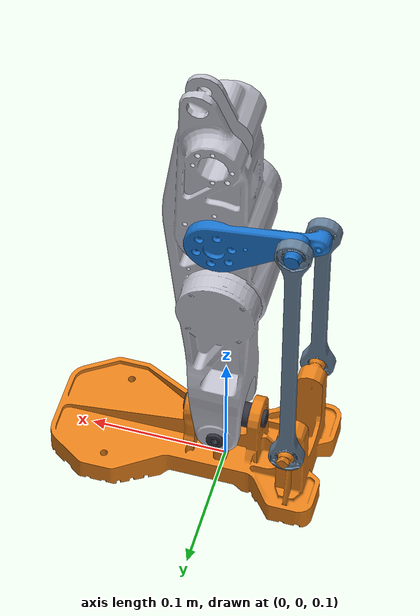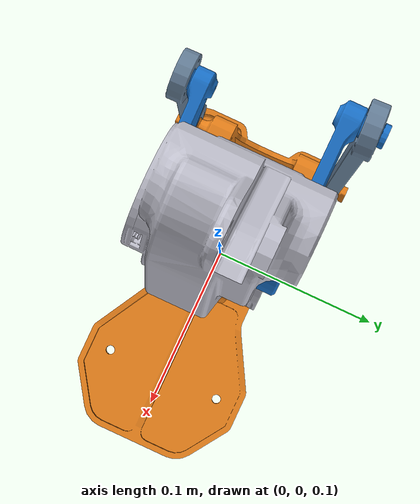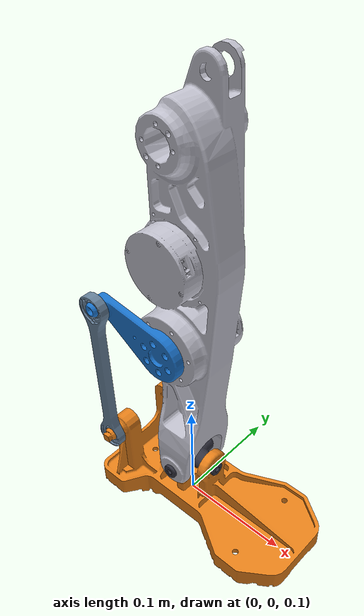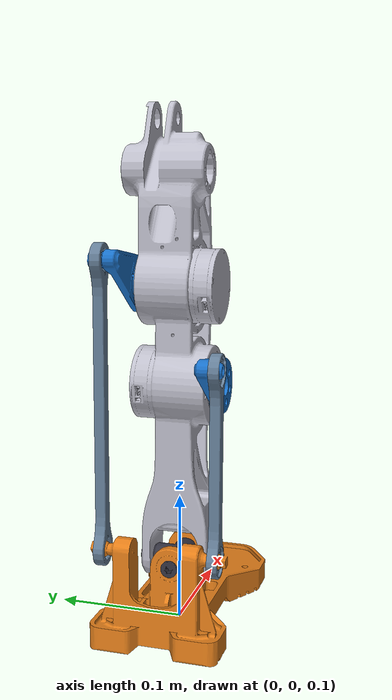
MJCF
<mujoco model="TG10-00-ankle">
  <compiler angle="radian" meshdir="../meshes/"/>
  <option timestep='0.0005' iterations='50' solver='PGS' gravity='0 0 -9.81'/>

  <default>
    <joint limited='true'  />
    <motor ctrllimited='true'/>
    <geom contype='0' conaffinity='0' condim='1' solref='0.005 1'/>
    <equality solref='0.001 1'/>
    <default class='cassie'>
      <geom material='cassie'/>
    </default>
  </default>

  <asset>
    <texture type='skybox' builtin='gradient' width='128' height='128' rgb1='0.4 0.6 0.8' rgb2='0 0 0'/>
    <texture name='plane' type='2d' builtin='checker' rgb1='0.2 0.2 0.2' rgb2='0.3 0.3 0.3' width='512' height='512'/>
    <material name='plane' reflectance='0.0' texture='plane' texrepeat='1 1' texuniform='true'/>
    <material name='cassie'    rgba='0.9 0.5 0.1 1'/>
    <material name='collision' rgba='0.1 0.5 0.9 0'/>
    <material name='obstacle'  rgba='0.2 0.6 0.2 1'/>
    <mesh name="base_link" file="base_link.STL"/>
    <mesh name="pitch_link" file="pl.STL"/>
    <mesh name="foot_link" file="fl.STL"/>
    <mesh name="leftlgl" file="leftlgl.STL"/>
    <mesh name="rlgl" file="rlgl.STL"/>
    <mesh name="ltl" file="ltl.STL"/>
    <mesh name="tlgl" file="tlgl.STL"/>
    <mesh name="rtl" file="rtl.STL"/>
    <mesh name="rtll" file="rtll.STL"/>
    <!-- === 通用物体颜色 === -->
    <material name="slate_grey" rgba="0.4 0.5 0.6 1.0"/>
    <material name="off_white" rgba="0.9 0.9 0.95 1.0"/>
    <material name="target_orange" rgba="0.9 0.5 0.1 1.0"/>

    <!-- === 机器人专用颜色 (分层设计) === -->
    <!-- 主体：深灰色，显得稳重 -->
    <material name="robot_base" rgba="0.2 0.2 0.25 1.0"/>
    <!-- 连杆：浅银色，模拟金属 -->
    <material name="robot_link" rgba="0.75 0.75 0.8 1.0"/>
    <!-- 关节：蓝色，突出活动部件 -->
    <material name="robot_joint" rgba="0.1 0.45 0.8 1.0"/>
    <!-- 末端执行器：红色，醒目 -->
    <material name="robot_ee" rgba="0.9 0.5 0.1 1.0"/>
  </asset>

  <worldbody>
    <body name="base_link"  pos='0 0 0.15' childclass='cassie'>
      <inertial pos="-6.6183e-06 2.4283e-06 0.17237" quat="0.698883 0.107613 0.107687 0.698846" mass="0.092687" diaginertia="4.1362e-05 2.2761e-05 2.2386e-05"/>
      <geom type="mesh" contype="0" conaffinity="0" group="1" density="0"  mesh="base_link"  material="robot_link"/>
      <body name="pitch_link">
        <inertial pos="-1.0151e-07 4.0306e-09 0" quat="0.499998 0.500002 -0.500002 0.499998" mass="0.019298" diaginertia="5.1065e-06 2.9238e-06 2.9238e-06"/>
        <joint name="pitch_joint" pos="0 0 0" axis="0 1 0"  range='-2 2'/>
        <geom type="mesh" contype="0" conaffinity="0" group="1" density="0"  mesh="pitch_link" material="robot_base" />
        <body name="foot_link">
          <inertial pos="0.010148 -1.2881e-06 -0.032832" quat="-0.000195283 0.661545 -0.000188286 0.749906" mass="0.27084" diaginertia="0.00118792 0.0010922 0.000241367"/>
          <joint name="roll_joint" pos="0 0 0" axis="1 0 0"  range='-2 2'/>
          <geom type="mesh" contype="0" conaffinity="0" group="1" density="0"  mesh="foot_link"  material="robot_ee"/>
          <body name="left_connect_link" pos="-0.055821 0.04325 0.022">
            <inertial pos="6.4982e-06 -0.00011797 0.1075" quat="0.725556 3.54583e-06 -4.78696e-06 0.688163" mass="0.019982" diaginertia="0.000100651 0.000100379 4.7202e-07"/>
            <joint name="left_connect_joint" pos="0 0 0" type="ball"/>
            <geom type="mesh" contype="0" conaffinity="0" group="1" density="0"  mesh="leftlgl"  material="slate_grey"/>
          </body>
          <body name="right_connect_link" pos="-0.055821 -0.04325 0.022">
            <inertial pos="-4.4687e-06 0.0001703 0.07" quat="0.71645 1.37958e-05 -1.41678e-05 0.697639" mass="0.01393" diaginertia="3.31522e-05 3.29018e-05 3.8676e-07"/>
            <joint name="right_connect_joint" pos="0 0 0" type="ball"/>
            <geom type="mesh" contype="0" conaffinity="0" group="1" density="0"  mesh="rlgl"  material="slate_grey"/>
          </body>
        </body>
      </body>
      <body name="left_motor_link" pos="0 0.043252 0.215" quat="0.982434 0 0.18661 0">
        <inertial pos="-0.020629 -0.0097268 4.2927e-08" quat="0.481752 0.481753 0.517602 0.517607" mass="0.016888" diaginertia="1.2629e-05 1.1261e-05 1.72441e-06"/>
        <joint name="left_motor_joint" pos="0 0 0" axis="0 1 0"  range='-1.2 1.2' damping='0.5' armature='0.001'/>
        <geom type="mesh" contype="0" conaffinity="0" group="1" density="0"  mesh="ltl"  material="robot_joint"/>
      </body>
      <body name="right_motor_link" pos="0 -0.043247 0.14" quat="0.982434 0 0.18661 0">
        <inertial pos="-0.018975 0.010107 -5.3183e-08" quat="0.513237 0.513242 0.4864 0.486401" mass="0.016207" diaginertia="1.14963e-05 1.0073e-05 1.66389e-06"/>
        <joint name="right_motor_joint" pos="0 0 0" axis="0 1 0" range='-1.2 1.2' damping='0.5' armature='0.001'/>
        <geom type="mesh" contype="0" conaffinity="0" group="1" density="0"  mesh="rtl"  material="robot_joint"/>
      </body>
    </body>
  </worldbody>

  <equality>
      <connect name="c1" body1="right_motor_link" body2="right_connect_link" anchor="-0.06 0 0" />
      <connect name="c2" body1="left_motor_link" body2="left_connect_link" anchor="-0.06 0 0" />
  </equality>

  <!-- 将 motor 改为 position -->
  <!-- kp: 比例增益 (刚度)，kv: 微分增益 (阻尼，可选) -->
  <actuator>
      <position name="left_motor_joint"  joint="left_motor_joint"  ctrlrange='-1.1 1.1' kp="100" kv='1'/>
      <position name="right_motor_joint" joint="right_motor_joint" ctrlrange='-1.1 1.1' kp="100" kv='1'/>
  </actuator>

</mujoco>
